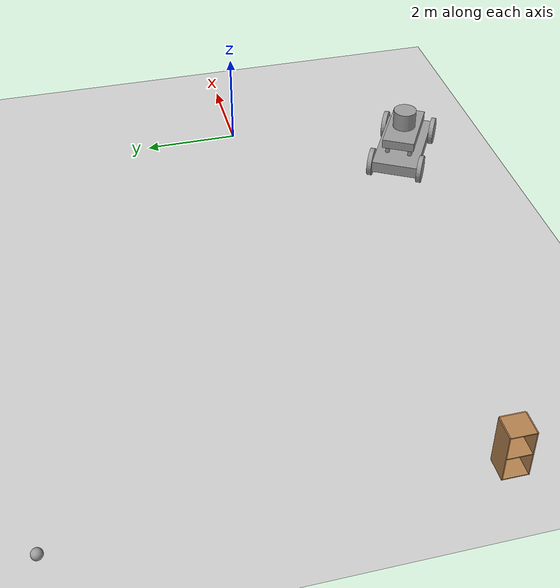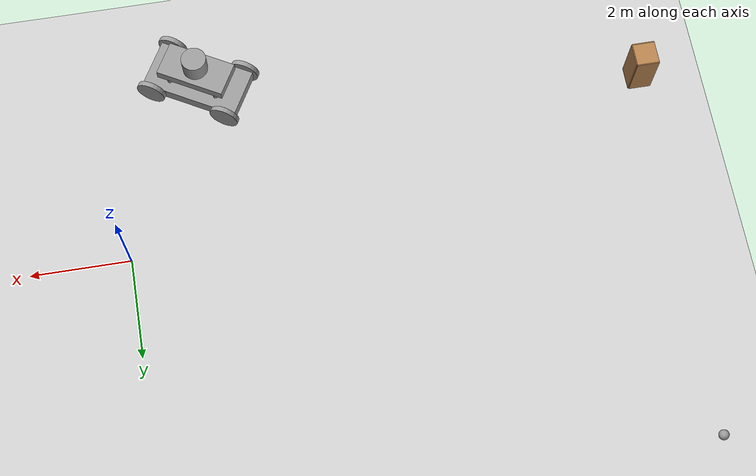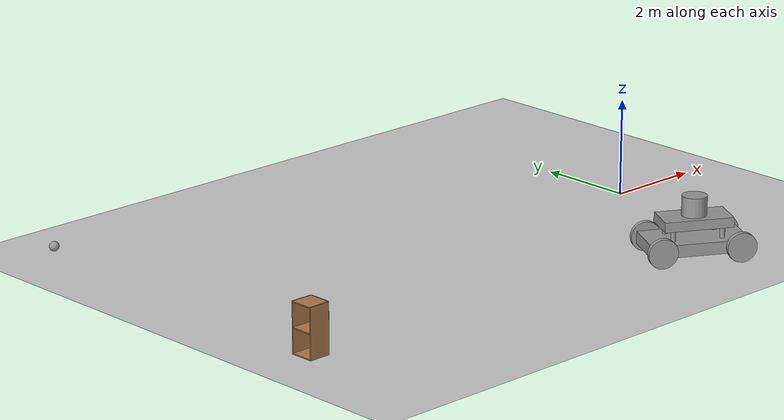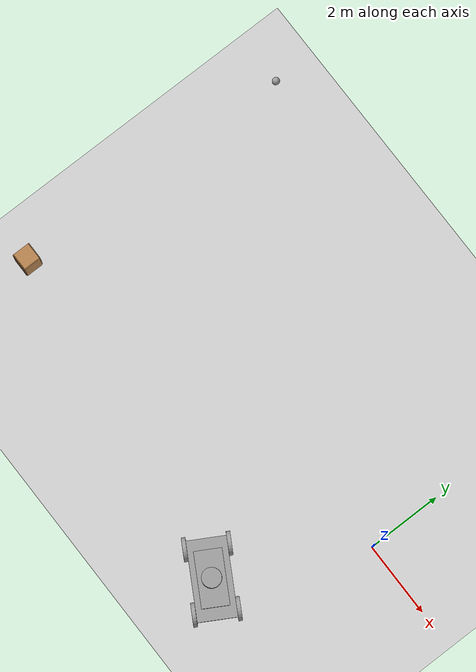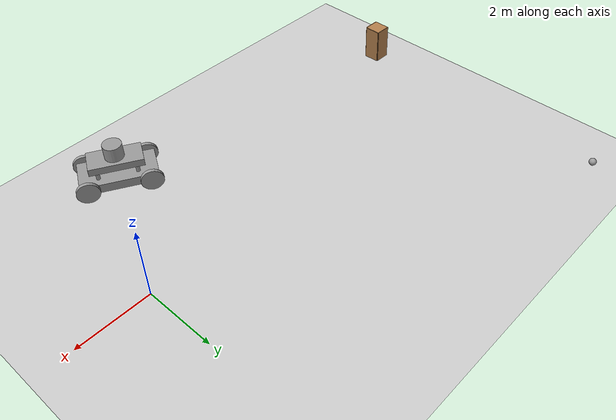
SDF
<sdf version="1.6">
 <world name="default">
  <model name="ground_plane">
   <static>1</static>
   <link name="link">
    <collision name="collision">
     <geometry><plane><normal>0 0 1</normal><size>100 100</size></plane></geometry>
     <surface>
      <contact><collide_bitmask>65535</collide_bitmask></contact>
      <friction><ode><mu>100</mu><mu2>50</mu2></ode></friction>
     </surface>
    </collision>
    <visual name="visual">
     <cast_shadows>0</cast_shadows>
     <geometry><plane><normal>0 0 1</normal><size>100 100</size></plane></geometry>
     <material>
      <script><uri>file://media/materials/scripts/gazebo.material</uri><name>Gazebo/Grey</name></script>
     </material>
    </visual>
   </link>
  </model>
  <model name="Quad_Robot">
   <link name="link_0">
    <inertial>
     <mass>1</mass>
     <inertia>
      <ixx>0.166667</ixx>
      <ixy>0</ixy>
      <ixz>0</ixz>
      <iyy>0.166667</iyy>
      <iyz>0</iyz>
      <izz>0.166667</izz>
     </inertia>
    </inertial>
    <pose>0.513425 -0.510943 0.328636 0 -0 0</pose>
    <visual name="visual">
     <geometry><box><size>2 1 0.25</size></box></geometry>
     <material>
      <lighting>1</lighting>
      <script><uri>file://media/materials/scripts/gazebo.material</uri><name>Gazebo/Grey</name></script>
      <shader type="pixel"><normal_map>__default__</normal_map></shader>
      <ambient>0.3 0.3 0.3 1</ambient>
      <diffuse>0.7 0.7 0.7 1</diffuse>
      <specular>0.01 0.01 0.01 1</specular>
      <emissive>0 0 0 1</emissive>
     </material>
    </visual>
    <collision name="collision">
     <geometry><box><size>2 1 0.25</size></box></geometry>
     <surface>
      <friction>
       <ode><mu>1</mu><mu2>1</mu2><fdir1>0 0 0</fdir1><slip1>0</slip1><slip2>0</slip2></ode>
       <torsional>
        <coefficient>1</coefficient>
        <patch_radius>0</patch_radius>
        <surface_radius>0</surface_radius>
        <use_patch_radius>1</use_patch_radius>
        <ode><slip>0</slip></ode>
       </torsional>
      </friction>
      <bounce><restitution_coefficient>0</restitution_coefficient><threshold>1e+06</threshold></bounce>
      <contact>
       <collide_without_contact>0</collide_without_contact>
       <collide_without_contact_bitmask>1</collide_without_contact_bitmask>
       <collide_bitmask>1</collide_bitmask>
       <ode>
        <soft_cfm>0</soft_cfm>
        <soft_erp>0.2</soft_erp>
        <kp>1e+13</kp>
        <kd>1</kd>
        <max_vel>0.01</max_vel>
        <min_depth>0</min_depth>
       </ode>
       <bullet>
        <split_impulse>1</split_impulse>
        <split_impulse_penetration_threshold>-0.01</split_impulse_penetration_threshold>
        <soft_cfm>0</soft_cfm>
        <soft_erp>0.2</soft_erp>
        <kp>1e+13</kp>
        <kd>1</kd>
       </bullet>
      </contact>
     </surface>
    </collision>
   </link>
   <link name="link_1">
    <inertial>
     <mass>1</mass>
     <inertia><ixx>0.145833</ixx><ixy>0</ixy><ixz>0</ixz><iyy>0.145833</iyy><iyz>0</iyz><izz>0.125</izz></inertia>
    </inertial>
    <pose>1.31343 0.039057 0.328636 1.575 -0 0</pose>
    <visual name="visual">
     <geometry><cylinder><radius>0.3</radius><length>0.1</length></cylinder></geometry>
     <material>
      <lighting>1</lighting>
      <script><uri>file://media/materials/scripts/gazebo.material</uri><name>Gazebo/Grey</name></script>
      <shader type="pixel"><normal_map>__default__</normal_map></shader>
      <ambient>0.3 0.3 0.3 1</ambient>
      <diffuse>0.7 0.7 0.7 1</diffuse>
      <specular>0.01 0.01 0.01 1</specular>
      <emissive>0 0 0 1</emissive>
     </material>
    </visual>
    <collision name="collision">
     <geometry><cylinder><radius>0.3</radius><length>0.1</length></cylinder></geometry>
     <surface>
      <friction>
       <ode><mu>1</mu><mu2>1</mu2><fdir1>0 0 0</fdir1><slip1>0</slip1><slip2>0</slip2></ode>
       <torsional>
        <coefficient>1</coefficient>
        <patch_radius>0</patch_radius>
        <surface_radius>0</surface_radius>
        <use_patch_radius>1</use_patch_radius>
        <ode><slip>0</slip></ode>
       </torsional>
      </friction>
      <bounce><restitution_coefficient>0</restitution_coefficient><threshold>1e+06</threshold></bounce>
      <contact>
       <collide_without_contact>0</collide_without_contact>
       <collide_without_contact_bitmask>1</collide_without_contact_bitmask>
       <collide_bitmask>1</collide_bitmask>
       <ode>
        <soft_cfm>0</soft_cfm>
        <soft_erp>0.2</soft_erp>
        <kp>1e+13</kp>
        <kd>1</kd>
        <max_vel>0.01</max_vel>
        <min_depth>0</min_depth>
       </ode>
       <bullet>
        <split_impulse>1</split_impulse>
        <split_impulse_penetration_threshold>-0.01</split_impulse_penetration_threshold>
        <soft_cfm>0</soft_cfm>
        <soft_erp>0.2</soft_erp>
        <kp>1e+13</kp>
        <kd>1</kd>
       </bullet>
      </contact>
     </surface>
    </collision>
   </link>
   <link name="link_1_clone">
    <inertial>
     <mass>1</mass>
     <inertia><ixx>0.145833</ixx><ixy>0</ixy><ixz>0</ixz><iyy>0.145833</iyy><iyz>0</iyz><izz>0.125</izz></inertia>
    </inertial>
    <pose>1.31343 -1.06094 0.328636 1.575 -0 0</pose>
    <visual name="visual">
     <geometry><cylinder><radius>0.3</radius><length>0.1</length></cylinder></geometry>
     <material>
      <lighting>1</lighting>
      <script><uri>file://media/materials/scripts/gazebo.material</uri><name>Gazebo/Grey</name></script>
      <shader type="pixel"><normal_map>__default__</normal_map></shader>
      <ambient>0.3 0.3 0.3 1</ambient>
      <diffuse>0.7 0.7 0.7 1</diffuse>
      <specular>0.01 0.01 0.01 1</specular>
      <emissive>0 0 0 1</emissive>
     </material>
    </visual>
    <collision name="collision">
     <geometry><cylinder><radius>0.3</radius><length>0.1</length></cylinder></geometry>
     <surface>
      <friction>
       <ode><mu>1</mu><mu2>1</mu2><fdir1>0 0 0</fdir1><slip1>0</slip1><slip2>0</slip2></ode>
       <torsional>
        <coefficient>1</coefficient>
        <patch_radius>0</patch_radius>
        <surface_radius>0</surface_radius>
        <use_patch_radius>1</use_patch_radius>
        <ode><slip>0</slip></ode>
       </torsional>
      </friction>
      <bounce><restitution_coefficient>0</restitution_coefficient><threshold>1e+06</threshold></bounce>
      <contact>
       <collide_without_contact>0</collide_without_contact>
       <collide_without_contact_bitmask>1</collide_without_contact_bitmask>
       <collide_bitmask>1</collide_bitmask>
       <ode>
        <soft_cfm>0</soft_cfm>
        <soft_erp>0.2</soft_erp>
        <kp>1e+13</kp>
        <kd>1</kd>
        <max_vel>0.01</max_vel>
        <min_depth>0</min_depth>
       </ode>
       <bullet>
        <split_impulse>1</split_impulse>
        <split_impulse_penetration_threshold>-0.01</split_impulse_penetration_threshold>
        <soft_cfm>0</soft_cfm>
        <soft_erp>0.2</soft_erp>
        <kp>1e+13</kp>
        <kd>1</kd>
       </bullet>
      </contact>
     </surface>
    </collision>
   </link>
   <link name="link_1_clone_0">
    <inertial>
     <mass>1</mass>
     <inertia><ixx>0.145833</ixx><ixy>0</ixy><ixz>0</ixz><iyy>0.145833</iyy><iyz>0</iyz><izz>0.125</izz></inertia>
    </inertial>
    <pose>-0.286575 0.039057 0.328636 1.575 -0 0</pose>
    <visual name="visual">
     <geometry><cylinder><radius>0.3</radius><length>0.1</length></cylinder></geometry>
     <material>
      <lighting>1</lighting>
      <script><uri>file://media/materials/scripts/gazebo.material</uri><name>Gazebo/Grey</name></script>
      <shader type="pixel"><normal_map>__default__</normal_map></shader>
      <ambient>0.3 0.3 0.3 1</ambient>
      <diffuse>0.7 0.7 0.7 1</diffuse>
      <specular>0.01 0.01 0.01 1</specular>
      <emissive>0 0 0 1</emissive>
     </material>
    </visual>
    <collision name="collision">
     <geometry><cylinder><radius>0.3</radius><length>0.1</length></cylinder></geometry>
     <surface>
      <friction>
       <ode><mu>1</mu><mu2>1</mu2><fdir1>0 0 0</fdir1><slip1>0</slip1><slip2>0</slip2></ode>
       <torsional>
        <coefficient>1</coefficient>
        <patch_radius>0</patch_radius>
        <surface_radius>0</surface_radius>
        <use_patch_radius>1</use_patch_radius>
        <ode><slip>0</slip></ode>
       </torsional>
      </friction>
      <bounce><restitution_coefficient>0</restitution_coefficient><threshold>1e+06</threshold></bounce>
      <contact>
       <collide_without_contact>0</collide_without_contact>
       <collide_without_contact_bitmask>1</collide_without_contact_bitmask>
       <collide_bitmask>1</collide_bitmask>
       <ode>
        <soft_cfm>0</soft_cfm>
        <soft_erp>0.2</soft_erp>
        <kp>1e+13</kp>
        <kd>1</kd>
        <max_vel>0.01</max_vel>
        <min_depth>0</min_depth>
       </ode>
       <bullet>
        <split_impulse>1</split_impulse>
        <split_impulse_penetration_threshold>-0.01</split_impulse_penetration_threshold>
        <soft_cfm>0</soft_cfm>
        <soft_erp>0.2</soft_erp>
        <kp>1e+13</kp>
        <kd>1</kd>
       </bullet>
      </contact>
     </surface>
    </collision>
   </link>
   <link name="link_1_clone_1">
    <inertial>
     <mass>1</mass>
     <inertia><ixx>0.145833</ixx><ixy>0</ixy><ixz>0</ixz><iyy>0.145833</iyy><iyz>0</iyz><izz>0.125</izz></inertia>
    </inertial>
    <pose>-0.286575 -1.06094 0.328636 1.575 -0 0</pose>
    <visual name="visual">
     <geometry><cylinder><radius>0.3</radius><length>0.1</length></cylinder></geometry>
     <material>
      <lighting>1</lighting>
      <script><uri>file://media/materials/scripts/gazebo.material</uri><name>Gazebo/Grey</name></script>
      <shader type="pixel"><normal_map>__default__</normal_map></shader>
      <ambient>0.3 0.3 0.3 1</ambient>
      <diffuse>0.7 0.7 0.7 1</diffuse>
      <specular>0.01 0.01 0.01 1</specular>
      <emissive>0 0 0 1</emissive>
     </material>
    </visual>
    <collision name="collision">
     <geometry><cylinder><radius>0.3</radius><length>0.1</length></cylinder></geometry>
     <surface>
      <friction>
       <ode><mu>1</mu><mu2>1</mu2><fdir1>0 0 0</fdir1><slip1>0</slip1><slip2>0</slip2></ode>
       <torsional>
        <coefficient>1</coefficient>
        <patch_radius>0</patch_radius>
        <surface_radius>0</surface_radius>
        <use_patch_radius>1</use_patch_radius>
        <ode><slip>0</slip></ode>
       </torsional>
      </friction>
      <bounce><restitution_coefficient>0</restitution_coefficient><threshold>1e+06</threshold></bounce>
      <contact>
       <collide_without_contact>0</collide_without_contact>
       <collide_without_contact_bitmask>1</collide_without_contact_bitmask>
       <collide_bitmask>1</collide_bitmask>
       <ode>
        <soft_cfm>0</soft_cfm>
        <soft_erp>0.2</soft_erp>
        <kp>1e+13</kp>
        <kd>1</kd>
        <max_vel>0.01</max_vel>
        <min_depth>0</min_depth>
       </ode>
       <bullet>
        <split_impulse>1</split_impulse>
        <split_impulse_penetration_threshold>-0.01</split_impulse_penetration_threshold>
        <soft_cfm>0</soft_cfm>
        <soft_erp>0.2</soft_erp>
        <kp>1e+13</kp>
        <kd>1</kd>
       </bullet>
      </contact>
     </surface>
    </collision>
   </link>
   <link name="link_2">
    <inertial>
     <mass>1</mass>
     <inertia><ixx>0.145833</ixx><ixy>0</ixy><ixz>0</ixz><iyy>0.145833</iyy><iyz>0</iyz><izz>0.125</izz></inertia>
    </inertial>
    <pose>1.01343 -0.260943 0.578636 0 -0 0</pose>
    <visual name="visual">
     <geometry><cylinder><radius>0.05</radius><length>0.25</length></cylinder></geometry>
     <material>
      <lighting>1</lighting>
      <script><uri>file://media/materials/scripts/gazebo.material</uri><name>Gazebo/Grey</name></script>
      <shader type="pixel"><normal_map>__default__</normal_map></shader>
      <ambient>0.3 0.3 0.3 1</ambient>
      <diffuse>0.7 0.7 0.7 1</diffuse>
      <specular>0.01 0.01 0.01 1</specular>
      <emissive>0 0 0 1</emissive>
     </material>
    </visual>
    <collision name="collision">
     <geometry><cylinder><radius>0.05</radius><length>0.25</length></cylinder></geometry>
     <surface>
      <friction>
       <ode><mu>1</mu><mu2>1</mu2><fdir1>0 0 0</fdir1><slip1>0</slip1><slip2>0</slip2></ode>
       <torsional>
        <coefficient>1</coefficient>
        <patch_radius>0</patch_radius>
        <surface_radius>0</surface_radius>
        <use_patch_radius>1</use_patch_radius>
        <ode><slip>0</slip></ode>
       </torsional>
      </friction>
      <bounce><restitution_coefficient>0</restitution_coefficient><threshold>1e+06</threshold></bounce>
      <contact>
       <collide_without_contact>0</collide_without_contact>
       <collide_without_contact_bitmask>1</collide_without_contact_bitmask>
       <collide_bitmask>1</collide_bitmask>
       <ode>
        <soft_cfm>0</soft_cfm>
        <soft_erp>0.2</soft_erp>
        <kp>1e+13</kp>
        <kd>1</kd>
        <max_vel>0.01</max_vel>
        <min_depth>0</min_depth>
       </ode>
       <bullet>
        <split_impulse>1</split_impulse>
        <split_impulse_penetration_threshold>-0.01</split_impulse_penetration_threshold>
        <soft_cfm>0</soft_cfm>
        <soft_erp>0.2</soft_erp>
        <kp>1e+13</kp>
        <kd>1</kd>
       </bullet>
      </contact>
     </surface>
    </collision>
   </link>
   <link name="link_2_clone">
    <inertial>
     <mass>1</mass>
     <inertia><ixx>0.145833</ixx><ixy>0</ixy><ixz>0</ixz><iyy>0.145833</iyy><iyz>0</iyz><izz>0.125</izz></inertia>
    </inertial>
    <pose>0.013425 -0.260943 0.578636 0 -0 0</pose>
    <visual name="visual">
     <geometry><cylinder><radius>0.05</radius><length>0.25</length></cylinder></geometry>
     <material>
      <lighting>1</lighting>
      <script><uri>file://media/materials/scripts/gazebo.material</uri><name>Gazebo/Grey</name></script>
      <shader type="pixel"><normal_map>__default__</normal_map></shader>
      <ambient>0.3 0.3 0.3 1</ambient>
      <diffuse>0.7 0.7 0.7 1</diffuse>
      <specular>0.01 0.01 0.01 1</specular>
      <emissive>0 0 0 1</emissive>
     </material>
    </visual>
    <collision name="collision">
     <geometry><cylinder><radius>0.05</radius><length>0.25</length></cylinder></geometry>
     <surface>
      <friction>
       <ode><mu>1</mu><mu2>1</mu2><fdir1>0 0 0</fdir1><slip1>0</slip1><slip2>0</slip2></ode>
       <torsional>
        <coefficient>1</coefficient>
        <patch_radius>0</patch_radius>
        <surface_radius>0</surface_radius>
        <use_patch_radius>1</use_patch_radius>
        <ode><slip>0</slip></ode>
       </torsional>
      </friction>
      <bounce><restitution_coefficient>0</restitution_coefficient><threshold>1e+06</threshold></bounce>
      <contact>
       <collide_without_contact>0</collide_without_contact>
       <collide_without_contact_bitmask>1</collide_without_contact_bitmask>
       <collide_bitmask>1</collide_bitmask>
       <ode>
        <soft_cfm>0</soft_cfm>
        <soft_erp>0.2</soft_erp>
        <kp>1e+13</kp>
        <kd>1</kd>
        <max_vel>0.01</max_vel>
        <min_depth>0</min_depth>
       </ode>
       <bullet>
        <split_impulse>1</split_impulse>
        <split_impulse_penetration_threshold>-0.01</split_impulse_penetration_threshold>
        <soft_cfm>0</soft_cfm>
        <soft_erp>0.2</soft_erp>
        <kp>1e+13</kp>
        <kd>1</kd>
       </bullet>
      </contact>
     </surface>
    </collision>
   </link>
   <link name="link_2_clone_0">
    <inertial>
     <mass>1</mass>
     <inertia><ixx>0.145833</ixx><ixy>0</ixy><ixz>0</ixz><iyy>0.145833</iyy><iyz>0</iyz><izz>0.125</izz></inertia>
    </inertial>
    <pose>1.01343 -0.760943 0.578636 0 -0 0</pose>
    <visual name="visual">
     <geometry><cylinder><radius>0.05</radius><length>0.25</length></cylinder></geometry>
     <material>
      <lighting>1</lighting>
      <script><uri>file://media/materials/scripts/gazebo.material</uri><name>Gazebo/Grey</name></script>
      <shader type="pixel"><normal_map>__default__</normal_map></shader>
      <ambient>0.3 0.3 0.3 1</ambient>
      <diffuse>0.7 0.7 0.7 1</diffuse>
      <specular>0.01 0.01 0.01 1</specular>
      <emissive>0 0 0 1</emissive>
     </material>
    </visual>
    <collision name="collision">
     <geometry><cylinder><radius>0.05</radius><length>0.25</length></cylinder></geometry>
     <surface>
      <friction>
       <ode><mu>1</mu><mu2>1</mu2><fdir1>0 0 0</fdir1><slip1>0</slip1><slip2>0</slip2></ode>
       <torsional>
        <coefficient>1</coefficient>
        <patch_radius>0</patch_radius>
        <surface_radius>0</surface_radius>
        <use_patch_radius>1</use_patch_radius>
        <ode><slip>0</slip></ode>
       </torsional>
      </friction>
      <bounce><restitution_coefficient>0</restitution_coefficient><threshold>1e+06</threshold></bounce>
      <contact>
       <collide_without_contact>0</collide_without_contact>
       <collide_without_contact_bitmask>1</collide_without_contact_bitmask>
       <collide_bitmask>1</collide_bitmask>
       <ode>
        <soft_cfm>0</soft_cfm>
        <soft_erp>0.2</soft_erp>
        <kp>1e+13</kp>
        <kd>1</kd>
        <max_vel>0.01</max_vel>
        <min_depth>0</min_depth>
       </ode>
       <bullet>
        <split_impulse>1</split_impulse>
        <split_impulse_penetration_threshold>-0.01</split_impulse_penetration_threshold>
        <soft_cfm>0</soft_cfm>
        <soft_erp>0.2</soft_erp>
        <kp>1e+13</kp>
        <kd>1</kd>
       </bullet>
      </contact>
     </surface>
    </collision>
   </link>
   <link name="link_2_clone_1">
    <inertial>
     <mass>1</mass>
     <inertia><ixx>0.145833</ixx><ixy>0</ixy><ixz>0</ixz><iyy>0.145833</iyy><iyz>0</iyz><izz>0.125</izz></inertia>
    </inertial>
    <pose>0.013425 -0.760943 0.578636 0 -0 0</pose>
    <visual name="visual">
     <geometry><cylinder><radius>0.05</radius><length>0.25</length></cylinder></geometry>
     <material>
      <lighting>1</lighting>
      <script><uri>file://media/materials/scripts/gazebo.material</uri><name>Gazebo/Grey</name></script>
      <shader type="pixel"><normal_map>__default__</normal_map></shader>
      <ambient>0.3 0.3 0.3 1</ambient>
      <diffuse>0.7 0.7 0.7 1</diffuse>
      <specular>0.01 0.01 0.01 1</specular>
      <emissive>0 0 0 1</emissive>
     </material>
    </visual>
    <collision name="collision">
     <geometry><cylinder><radius>0.05</radius><length>0.25</length></cylinder></geometry>
     <surface>
      <friction>
       <ode><mu>1</mu><mu2>1</mu2><fdir1>0 0 0</fdir1><slip1>0</slip1><slip2>0</slip2></ode>
       <torsional>
        <coefficient>1</coefficient>
        <patch_radius>0</patch_radius>
        <surface_radius>0</surface_radius>
        <use_patch_radius>1</use_patch_radius>
        <ode><slip>0</slip></ode>
       </torsional>
      </friction>
      <bounce><restitution_coefficient>0</restitution_coefficient><threshold>1e+06</threshold></bounce>
      <contact>
       <collide_without_contact>0</collide_without_contact>
       <collide_without_contact_bitmask>1</collide_without_contact_bitmask>
       <collide_bitmask>1</collide_bitmask>
       <ode>
        <soft_cfm>0</soft_cfm>
        <soft_erp>0.2</soft_erp>
        <kp>1e+13</kp>
        <kd>1</kd>
        <max_vel>0.01</max_vel>
        <min_depth>0</min_depth>
       </ode>
       <bullet>
        <split_impulse>1</split_impulse>
        <split_impulse_penetration_threshold>-0.01</split_impulse_penetration_threshold>
        <soft_cfm>0</soft_cfm>
        <soft_erp>0.2</soft_erp>
        <kp>1e+13</kp>
        <kd>1</kd>
       </bullet>
      </contact>
     </surface>
    </collision>
   </link>
   <link name="link_3">
    <inertial>
     <mass>1</mass>
     <inertia>
      <ixx>0.166667</ixx>
      <ixy>0</ixy>
      <ixz>0</ixz>
      <iyy>0.166667</iyy>
      <iyz>0</iyz>
      <izz>0.166667</izz>
     </inertia>
    </inertial>
    <pose>0.513425 -0.510941 0.773636 0 -0 0</pose>
    <visual name="visual">
     <geometry><box><size>1.4 0.7 0.2</size></box></geometry>
     <material>
      <lighting>1</lighting>
      <script><uri>file://media/materials/scripts/gazebo.material</uri><name>Gazebo/Grey</name></script>
      <shader type="pixel"><normal_map>__default__</normal_map></shader>
      <ambient>0.3 0.3 0.3 1</ambient>
      <diffuse>0.7 0.7 0.7 1</diffuse>
      <specular>0.01 0.01 0.01 1</specular>
      <emissive>0 0 0 1</emissive>
     </material>
    </visual>
    <collision name="collision">
     <geometry><box><size>1.4 0.7 0.2</size></box></geometry>
     <surface>
      <friction>
       <ode><mu>1</mu><mu2>1</mu2><fdir1>0 0 0</fdir1><slip1>0</slip1><slip2>0</slip2></ode>
       <torsional>
        <coefficient>1</coefficient>
        <patch_radius>0</patch_radius>
        <surface_radius>0</surface_radius>
        <use_patch_radius>1</use_patch_radius>
        <ode><slip>0</slip></ode>
       </torsional>
      </friction>
      <bounce><restitution_coefficient>0</restitution_coefficient><threshold>1e+06</threshold></bounce>
      <contact>
       <collide_without_contact>0</collide_without_contact>
       <collide_without_contact_bitmask>1</collide_without_contact_bitmask>
       <collide_bitmask>1</collide_bitmask>
       <ode>
        <soft_cfm>0</soft_cfm>
        <soft_erp>0.2</soft_erp>
        <kp>1e+13</kp>
        <kd>1</kd>
        <max_vel>0.01</max_vel>
        <min_depth>0</min_depth>
       </ode>
       <bullet>
        <split_impulse>1</split_impulse>
        <split_impulse_penetration_threshold>-0.01</split_impulse_penetration_threshold>
        <soft_cfm>0</soft_cfm>
        <soft_erp>0.2</soft_erp>
        <kp>1e+13</kp>
        <kd>1</kd>
       </bullet>
      </contact>
     </surface>
    </collision>
   </link>
   <link name="link_4">
    <inertial>
     <mass>1</mass>
     <inertia><ixx>0.145833</ixx><ixy>0</ixy><ixz>0</ixz><iyy>0.145833</iyy><iyz>0</iyz><izz>0.125</izz></inertia>
    </inertial>
    <pose>0.513425 -0.510941 1.07364 0 -0 0</pose>
    <visual name="visual">
     <geometry><cylinder><radius>0.25</radius><length>0.4</length></cylinder></geometry>
     <material>
      <lighting>1</lighting>
      <script><uri>file://media/materials/scripts/gazebo.material</uri><name>Gazebo/Grey</name></script>
      <shader type="pixel"><normal_map>__default__</normal_map></shader>
      <ambient>0.3 0.3 0.3 1</ambient>
      <diffuse>0.7 0.7 0.7 1</diffuse>
      <specular>0.01 0.01 0.01 1</specular>
      <emissive>0 0 0 1</emissive>
     </material>
    </visual>
    <collision name="collision">
     <geometry><cylinder><radius>0.25</radius><length>0.4</length></cylinder></geometry>
     <surface>
      <friction>
       <ode><mu>1</mu><mu2>1</mu2><fdir1>0 0 0</fdir1><slip1>0</slip1><slip2>0</slip2></ode>
       <torsional>
        <coefficient>1</coefficient>
        <patch_radius>0</patch_radius>
        <surface_radius>0</surface_radius>
        <use_patch_radius>1</use_patch_radius>
        <ode><slip>0</slip></ode>
       </torsional>
      </friction>
      <bounce><restitution_coefficient>0</restitution_coefficient><threshold>1e+06</threshold></bounce>
      <contact>
       <collide_without_contact>0</collide_without_contact>
       <collide_without_contact_bitmask>1</collide_without_contact_bitmask>
       <collide_bitmask>1</collide_bitmask>
       <ode>
        <soft_cfm>0</soft_cfm>
        <soft_erp>0.2</soft_erp>
        <kp>1e+13</kp>
        <kd>1</kd>
        <max_vel>0.01</max_vel>
        <min_depth>0</min_depth>
       </ode>
       <bullet>
        <split_impulse>1</split_impulse>
        <split_impulse_penetration_threshold>-0.01</split_impulse_penetration_threshold>
        <soft_cfm>0</soft_cfm>
        <soft_erp>0.2</soft_erp>
        <kp>1e+13</kp>
        <kd>1</kd>
       </bullet>
      </contact>
     </surface>
    </collision>
   </link>
   <joint name="link_0_JOINT_0" type="revolute">
    <parent>link_0</parent>
    <child>link_1</child>
    <axis>
     <xyz>0 0 1</xyz>
     <limit>
      <lower>-1.79769e+308</lower>
      <upper>1.79769e+308</upper>
      <effort>-1</effort>
      <velocity>-1</velocity>
     </limit>
     <dynamics>
      <spring_reference>0</spring_reference>
      <spring_stiffness>0</spring_stiffness>
      <damping>0</damping>
     </dynamics>
     <use_parent_model_frame>0</use_parent_model_frame>
    </axis>
    <physics>
     <ode><limit><cfm>0</cfm><erp>0.2</erp></limit><suspension><cfm>0</cfm><erp>0.2</erp></suspension></ode>
    </physics>
   </joint>
   <joint name="link_0_JOINT_1" type="revolute">
    <parent>link_0</parent>
    <child>link_1_clone</child>
    <axis>
     <xyz>0 0 1</xyz>
     <limit>
      <lower>-1.79769e+308</lower>
      <upper>1.79769e+308</upper>
      <effort>-1</effort>
      <velocity>-1</velocity>
     </limit>
     <dynamics>
      <spring_reference>0</spring_reference>
      <spring_stiffness>0</spring_stiffness>
      <damping>0</damping>
     </dynamics>
     <use_parent_model_frame>0</use_parent_model_frame>
    </axis>
    <physics>
     <ode><limit><cfm>0</cfm><erp>0.2</erp></limit><suspension><cfm>0</cfm><erp>0.2</erp></suspension></ode>
    </physics>
   </joint>
   <joint name="link_0_JOINT_2" type="revolute">
    <parent>link_0</parent>
    <child>link_1_clone_0</child>
    <axis>
     <xyz>0 0 1</xyz>
     <limit>
      <lower>-1.79769e+308</lower>
      <upper>1.79769e+308</upper>
      <effort>-1</effort>
      <velocity>-1</velocity>
     </limit>
     <dynamics>
      <spring_reference>0</spring_reference>
      <spring_stiffness>0</spring_stiffness>
      <damping>0</damping>
     </dynamics>
     <use_parent_model_frame>0</use_parent_model_frame>
    </axis>
    <physics>
     <ode><limit><cfm>0</cfm><erp>0.2</erp></limit><suspension><cfm>0</cfm><erp>0.2</erp></suspension></ode>
    </physics>
   </joint>
   <joint name="link_0_JOINT_3" type="revolute">
    <parent>link_0</parent>
    <child>link_1_clone_1</child>
    <axis>
     <xyz>0 0 1</xyz>
     <limit>
      <lower>-1.79769e+308</lower>
      <upper>1.79769e+308</upper>
      <effort>-1</effort>
      <velocity>-1</velocity>
     </limit>
     <dynamics>
      <spring_reference>0</spring_reference>
      <spring_stiffness>0</spring_stiffness>
      <damping>0</damping>
     </dynamics>
     <use_parent_model_frame>0</use_parent_model_frame>
    </axis>
    <physics>
     <ode><limit><cfm>0</cfm><erp>0.2</erp></limit><suspension><cfm>0</cfm><erp>0.2</erp></suspension></ode>
    </physics>
   </joint>
   <joint name="link_0_JOINT_4" type="fixed">
    <parent>link_0</parent>
    <child>link_2</child>
    <physics>
     <ode><limit><cfm>0</cfm><erp>0.2</erp></limit><suspension><cfm>0</cfm><erp>0.2</erp></suspension></ode>
    </physics>
   </joint>
   <joint name="link_0_JOINT_5" type="fixed">
    <parent>link_0</parent>
    <child>link_2_clone</child>
    <physics>
     <ode><limit><cfm>0</cfm><erp>0.2</erp></limit><suspension><cfm>0</cfm><erp>0.2</erp></suspension></ode>
    </physics>
   </joint>
   <joint name="link_0_JOINT_6" type="fixed">
    <parent>link_0</parent>
    <child>link_2_clone_0</child>
    <physics>
     <ode><limit><cfm>0</cfm><erp>0.2</erp></limit><suspension><cfm>0</cfm><erp>0.2</erp></suspension></ode>
    </physics>
   </joint>
   <joint name="link_0_JOINT_7" type="fixed">
    <parent>link_0</parent>
    <child>link_2_clone_1</child>
    <physics>
     <ode><limit><cfm>0</cfm><erp>0.2</erp></limit><suspension><cfm>0</cfm><erp>0.2</erp></suspension></ode>
    </physics>
   </joint>
   <joint name="link_0_JOINT_8" type="fixed">
    <parent>link_0</parent>
    <child>link_3</child>
    <physics>
     <ode><limit><cfm>0</cfm><erp>0.2</erp></limit><suspension><cfm>0</cfm><erp>0.2</erp></suspension></ode>
    </physics>
   </joint>
   <joint name="link_3_JOINT_9" type="fixed">
    <parent>link_3</parent>
    <child>link_4</child>
    <physics>
     <ode><limit><cfm>0</cfm><erp>0.2</erp></limit><suspension><cfm>0</cfm><erp>0.2</erp></suspension></ode>
    </physics>
   </joint>
   <static>0</static>
   <pose>-1.97132 -2.86284 -0.028429 -1e-06 -1e-06 -0.516337</pose>
  </model>
  <model name="cabinet">
   <static>1</static>
   <link name="cabinet_bottom_plate">
    <inertial>
     <pose>0 0 -1 0 -0 0</pose>
     <inertia><ixx>2.05</ixx><ixy>0</ixy><ixz>0</ixz><iyy>2.05</iyy><iyz>0</iyz><izz>2.05</izz></inertia>
     <mass>25</mass>
    </inertial>
    <collision name="cabinet_bottom_plate_geom">
     <pose>0 0 0.01 0 -0 0</pose>
     <geometry><box><size>0.45 0.45 0.02</size></box></geometry>
    </collision>
    <visual name="cabinet_bottom_plate_geom_visual">
     <pose>0 0 0.01 0 -0 0</pose>
     <geometry><box><size>0.45 0.45 0.02</size></box></geometry>
     <material>
      <script><uri>file://media/materials/scripts/gazebo.material</uri><name>Gazebo/Wood</name></script>
     </material>
    </visual>
    <collision name="cabinet_bottom_plate_geom_cabinet_back_plate">
     <pose>0.235 0 0.51 0 -0 0</pose>
     <geometry><box><size>0.02 0.45 1.02</size></box></geometry>
    </collision>
    <visual name="cabinet_bottom_plate_geom_cabinet_back_plate_visual">
     <pose>0.235 0 0.51 0 -0 0</pose>
     <geometry><box><size>0.02 0.45 1.02</size></box></geometry>
     <material>
      <script><uri>file://media/materials/scripts/gazebo.material</uri><name>Gazebo/Wood</name></script>
     </material>
    </visual>
    <collision name="cabinet_bottom_plate_geom_cabinet_left_plate">
     <pose>0 0.235 0.51 0 -0 0</pose>
     <geometry><box><size>0.45 0.02 1.02</size></box></geometry>
    </collision>
    <visual name="cabinet_bottom_plate_geom_cabinet_left_plate_visual">
     <pose>0 0.235 0.51 0 -0 0</pose>
     <geometry><box><size>0.45 0.02 1.02</size></box></geometry>
     <material>
      <script><uri>file://media/materials/scripts/gazebo.material</uri><name>Gazebo/Wood</name></script>
     </material>
    </visual>
    <collision name="cabinet_bottom_plate_geom_cabinet_middle_plate">
     <pose>0 0 0.51 0 -0 0</pose>
     <geometry><box><size>0.45 0.45 0.02</size></box></geometry>
    </collision>
    <visual name="cabinet_bottom_plate_geom_cabinet_middle_plate_visual">
     <pose>0 0 0.51 0 -0 0</pose>
     <geometry><box><size>0.45 0.45 0.02</size></box></geometry>
     <material>
      <script><uri>file://media/materials/scripts/gazebo.material</uri><name>Gazebo/Wood</name></script>
     </material>
    </visual>
    <collision name="cabinet_bottom_plate_geom_cabinet_right_plate">
     <pose>0 -0.235 0.51 0 -0 0</pose>
     <geometry><box><size>0.45 0.02 1.02</size></box></geometry>
    </collision>
    <visual name="cabinet_bottom_plate_geom_cabinet_right_plate_visual">
     <pose>0 -0.235 0.51 0 -0 0</pose>
     <geometry><box><size>0.45 0.02 1.02</size></box></geometry>
     <material>
      <script><uri>file://media/materials/scripts/gazebo.material</uri><name>Gazebo/Wood</name></script>
     </material>
    </visual>
    <collision name="cabinet_bottom_plate_geom_cabinet_top_plate">
     <pose>0 0 1.01 0 -0 0</pose>
     <geometry><box><size>0.45 0.45 0.02</size></box></geometry>
    </collision>
    <visual name="cabinet_bottom_plate_geom_cabinet_top_plate_visual">
     <pose>0 0 1.01 0 -0 0</pose>
     <geometry><box><size>0.45 0.45 0.02</size></box></geometry>
     <material>
      <script><uri>file://media/materials/scripts/gazebo.material</uri><name>Gazebo/Wood</name></script>
     </material>
    </visual>
   </link>
   <pose>-10.7156 -2.34275 0 0 -0 0</pose>
  </model>
  <model name="my_ball">
   <link name="link_0">
    <inertial>
     <mass>1</mass>
     <inertia><ixx>0.1</ixx><ixy>0</ixy><ixz>0</ixz><iyy>0.1</iyy><iyz>0</iyz><izz>0.1</izz></inertia>
    </inertial>
    <visual name="visual">
     <geometry><sphere><radius>0.1</radius></sphere></geometry>
     <material>
      <lighting>1</lighting>
      <script><uri>file://media/materials/scripts/gazebo.material</uri><name>Gazebo/Grey</name></script>
      <shader type="vertex"><normal_map>__default__</normal_map></shader>
      <ambient>1 1 1 1</ambient>
      <diffuse>1 1 1 1</diffuse>
      <specular>1 1 1 1</specular>
      <emissive>1 1 1 1</emissive>
     </material>
    </visual>
    <collision name="collision">
     <geometry><sphere><radius>0.1</radius></sphere></geometry>
     <surface>
      <friction>
       <ode><mu>1</mu><mu2>1</mu2><fdir1>0 0 0</fdir1><slip1>0</slip1><slip2>0</slip2></ode>
       <torsional>
        <coefficient>1</coefficient>
        <patch_radius>0</patch_radius>
        <surface_radius>0</surface_radius>
        <use_patch_radius>1</use_patch_radius>
        <ode><slip>0</slip></ode>
       </torsional>
      </friction>
      <bounce><restitution_coefficient>0</restitution_coefficient><threshold>1e+06</threshold></bounce>
      <contact>
       <collide_without_contact>0</collide_without_contact>
       <collide_without_contact_bitmask>1</collide_without_contact_bitmask>
       <collide_bitmask>1</collide_bitmask>
       <ode>
        <soft_cfm>0</soft_cfm>
        <soft_erp>0.2</soft_erp>
        <kp>1e+13</kp>
        <kd>1</kd>
        <max_vel>0.01</max_vel>
        <min_depth>0</min_depth>
       </ode>
       <bullet>
        <split_impulse>1</split_impulse>
        <split_impulse_penetration_threshold>-0.01</split_impulse_penetration_threshold>
        <soft_cfm>0</soft_cfm>
        <soft_erp>0.2</soft_erp>
        <kp>1e+13</kp>
        <kd>1</kd>
       </bullet>
      </contact>
     </surface>
    </collision>
   </link>
   <static>0</static>
   <pose>-10.5647 5.25379 0.1 0 -0 0</pose>
  </model>
 </world>
</sdf>
